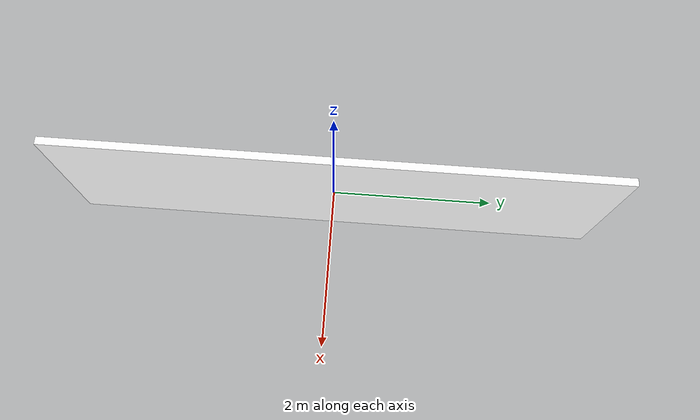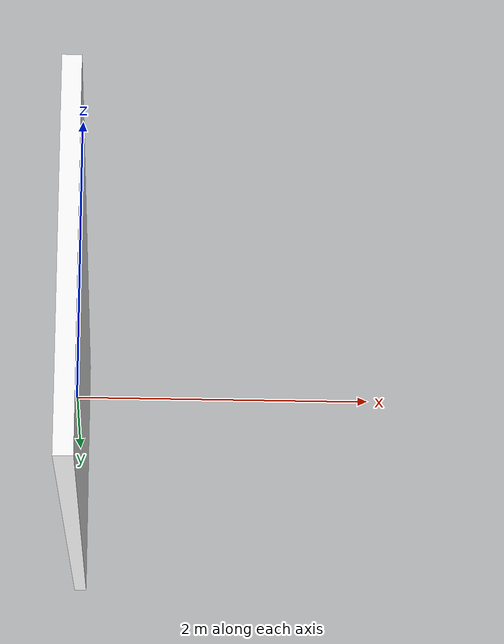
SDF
<?xml version="1.0"?>
<sdf version='1.4'>
  <model name='room_wall_2x5m'>

    <link name="link">

      <visual name="visual">
        <geometry>
          <box>
            <size>0.1 7.0 2.0</size>
          </box>
        </geometry>
        <material>
        	<pbr>
        		<metal>
        			<albedo_map>model://room_wall_2x5m/material/textures/wall_texture_1404x562.jpg</albedo_map>
        		</metal>
        	</pbr>
        	<diffuse>1 1 1 1</diffuse>

        </material>
      </visual>

      <collision name ="collision">
        <geometry>
           <box>
            <size>0.1 7.0 2.0</size>
          </box>
        </geometry>
      </collision>

    </link>
    <static>1</static>
    <allow_auto_disable>1</allow_auto_disable>
  </model>
</sdf>
